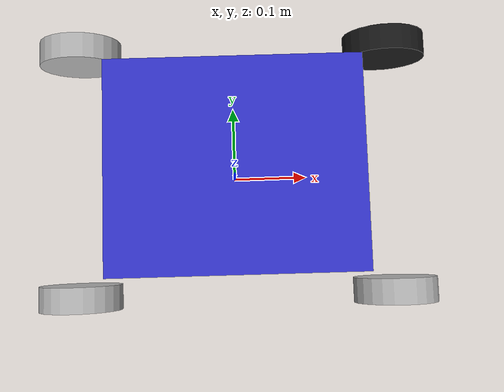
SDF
<?xml version="1.0" ?>
<sdf version="1.10">
  <model name="omni_bot">
    <pose>0 0 0.07 0 0 0</pose>
    <static>false</static>
    <self_collide>false</self_collide>

    <!-- ================= Base ================= -->
    <link name="base_link">
      <pose>0 0 0.07 0 0 0</pose>
      <inertial>
        <mass>4.0</mass>
        <inertia>
          <!-- Modestly larger inertia to improve stability -->
          <ixx>0.05</ixx><ixy>0.0</ixy><ixz>0.0</ixz>
          <iyy>0.07</iyy><iyz>0.0</iyz>
          <izz>0.09</izz>
        </inertia>
      </inertial>
      <collision name="base_collision">
        <geometry><box><size>0.30 0.25 0.10</size></box></geometry>
        <surface>
          <contact><collide_without_contact>false</collide_without_contact></contact>
          <friction>
            <ode><mu>1.0</mu><mu2>1.0</mu2></ode>
          </friction>
        </surface>
      </collision>
      <visual name="base_visual">
        <geometry><box><size>0.30 0.25 0.10</size></box></geometry>
        <material>
          <ambient>0.2 0.2 0.8 1</ambient>
          <diffuse>0.2 0.2 0.8 1</diffuse>
          <specular>0.2 0.2 0.8 1</specular>
        </material>
      </visual>
    </link>

    <!-- ===== Wheels (cyl axis Z). Roll +90deg so cylinder Z aligns with model Y (axle). ===== -->
    <!-- Parameters: wheelbase=0.38 (x), separation=0.30 (y), radius=0.05, thickness=0.03 -->

    <!-- Common wheel collision/visual block -->
    <!-- Front-left -->
    <link name="wheel_fl">
      <pose>0.19 0.15 0.05 1.57079632679 0 0</pose>
      <inertial>
        <mass>0.6</mass>
        <inertia>
          <ixx>0.001</ixx><ixy>0</ixy><ixz>0</ixz>
          <iyy>0.0006</iyy><iyz>0</iyz>
          <izz>0.001</izz>
        </inertia>
      </inertial>
      <collision name="col">
        <geometry><cylinder><radius>0.05</radius><length>0.03</length></cylinder></geometry>
        <surface>
          <friction>
            <ode><mu>1.2</mu><mu2>1.0</mu2></ode>
          </friction>
        </surface>
      </collision>
      <visual name="vis">
        <geometry><cylinder><radius>0.05</radius><length>0.03</length></cylinder></geometry>
        <material><ambient>0.1 0.1 0.1 1</ambient></material>
      </visual>
    </link>
    <joint name="front_left_wheel_joint" type="revolute">
      <parent>base_link</parent>
      <child>wheel_fl</child>
      <axis>
        <!-- rotate about +Y of the model frame -->
        <xyz>0 1 0</xyz>
        <xyz_expressed_in>__model__</xyz_expressed_in>
        <limit><lower>-1e16</lower><upper>1e16</upper><effort>50</effort><velocity>100</velocity></limit>
        <dynamics><damping>0.2</damping><friction>0.0</friction></dynamics>
      </axis>
    </joint>

    <!-- Front-right -->
    <link name="wheel_fr">
      <pose>0.19 -0.15 0.05 1.57079632679 0 0</pose>
      <inertial>
        <mass>0.6</mass>
        <inertia>
          <ixx>0.001</ixx><ixy>0</ixy><ixz>0</ixz>
          <iyy>0.0006</iyy><iyz>0</iyz>
          <izz>0.001</izz>
        </inertia>
      </inertial>
      <collision name="col">
        <geometry><cylinder><radius>0.05</radius><length>0.03</length></cylinder></geometry>
        <surface>
          <friction>
            <ode><mu>1.2</mu><mu2>1.0</mu2></ode>
          </friction>
        </surface>
      </collision>
      <visual name="vis"><geometry><cylinder><radius>0.05</radius><length>0.03</length></cylinder></geometry></visual>
    </link>
    <joint name="front_right_wheel_joint" type="revolute">
      <parent>base_link</parent>
      <child>wheel_fr</child>
      <axis>
        <xyz>0 1 0</xyz>
        <xyz_expressed_in>__model__</xyz_expressed_in>
        <limit><lower>-1e16</lower><upper>1e16</upper><effort>50</effort><velocity>100</velocity></limit>
        <dynamics><damping>0.2</damping><friction>0.0</friction></dynamics>
      </axis>
    </joint>

    <!-- Back-left -->
    <link name="wheel_bl">
      <pose>-0.19 0.15 0.05 1.57079632679 0 0</pose>
      <inertial>
        <mass>0.6</mass>
        <inertia>
          <ixx>0.001</ixx><ixy>0</ixy><ixz>0</ixz>
          <iyy>0.0006</iyy><iyz>0</iyz>
          <izz>0.001</izz>
        </inertia>
      </inertial>
      <collision name="col">
        <geometry><cylinder><radius>0.05</radius><length>0.03</length></cylinder></geometry>
        <surface>
          <friction>
            <ode><mu>1.2</mu><mu2>1.0</mu2></ode>
          </friction>
        </surface>
      </collision>
      <visual name="vis"><geometry><cylinder><radius>0.05</radius><length>0.03</length></cylinder></geometry></visual>
    </link>
    <joint name="back_left_wheel_joint" type="revolute">
      <parent>base_link</parent>
      <child>wheel_bl</child>
      <axis>
        <xyz>0 1 0</xyz>
        <xyz_expressed_in>__model__</xyz_expressed_in>
        <limit><lower>-1e16</lower><upper>1e16</upper><effort>50</effort><velocity>100</velocity></limit>
        <dynamics><damping>0.2</damping><friction>0.0</friction></dynamics>
      </axis>
    </joint>

    <!-- Back-right -->
    <link name="wheel_br">
      <pose>-0.19 -0.15 0.05 1.57079632679 0 0</pose>
      <inertial>
        <mass>0.6</mass>
        <inertia>
          <ixx>0.001</ixx><ixy>0</ixy><ixz>0</ixz>
          <iyy>0.0006</iyy><iyz>0</iyz>
          <izz>0.001</izz>
        </inertia>
      </inertial>
      <collision name="col">
        <geometry><cylinder><radius>0.05</radius><length>0.03</length></cylinder></geometry>
        <surface>
          <friction>
            <ode><mu>1.2</mu><mu2>1.0</mu2></ode>
          </friction>
        </surface>
      </collision>
      <visual name="vis"><geometry><cylinder><radius>0.05</radius><length>0.03</length></cylinder></geometry></visual>
    </link>
    <joint name="back_right_wheel_joint" type="revolute">
      <parent>base_link</parent>
      <child>wheel_br</child>
      <axis>
        <xyz>0 1 0</xyz>
        <xyz_expressed_in>__model__</xyz_expressed_in>
        <limit><lower>-1e16</lower><upper>1e16</upper><effort>50</effort><velocity>100</velocity></limit>
        <dynamics><damping>0.2</damping><friction>0.0</friction></dynamics>
      </axis>
    </joint>

    <!-- ================= Plugins ================= -->
    <plugin filename="gz-sim-mecanum-drive-system" name="gz::sim::systems::MecanumDrive">
      <front_left_joint>front_left_wheel_joint</front_left_joint>
      <front_right_joint>front_right_wheel_joint</front_right_joint>
      <back_left_joint>back_left_wheel_joint</back_left_joint>
      <back_right_joint>back_right_wheel_joint</back_right_joint>
      <wheelbase>0.38</wheelbase>
      <wheel_separation>0.30</wheel_separation>
      <wheel_radius>0.05</wheel_radius>
      <odom_publish_frequency>50</odom_publish_frequency>
      <topic>/model/omni_bot/cmd_vel</topic>
    </plugin>

    <plugin filename="gz-sim-joint-state-publisher-system" name="gz::sim::systems::JointStatePublisher">
      <frame_id>omni_bot</frame_id>
    </plugin>
  </model>
</sdf>
